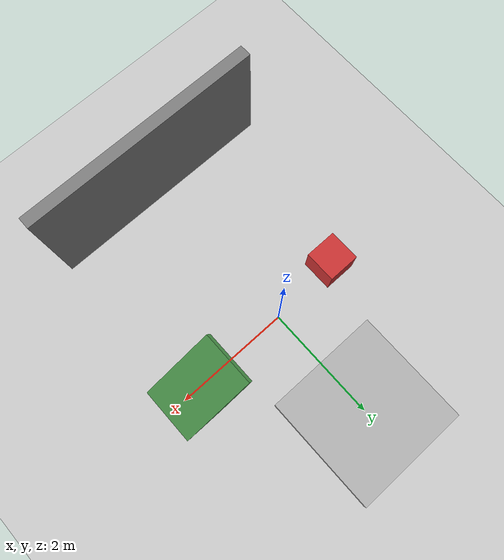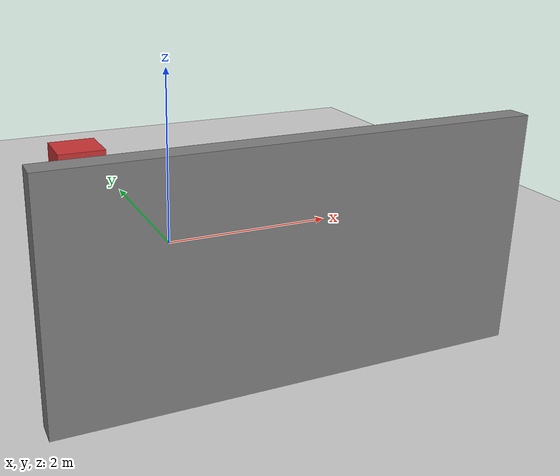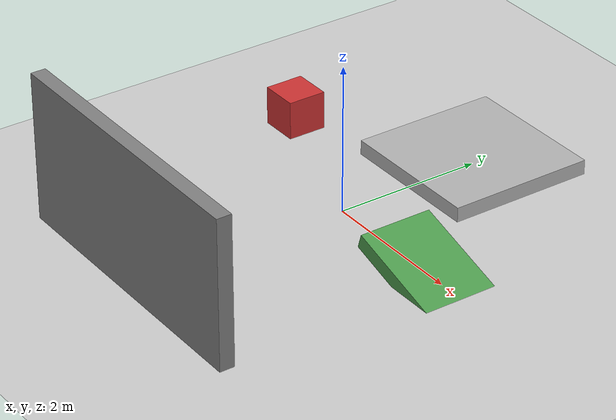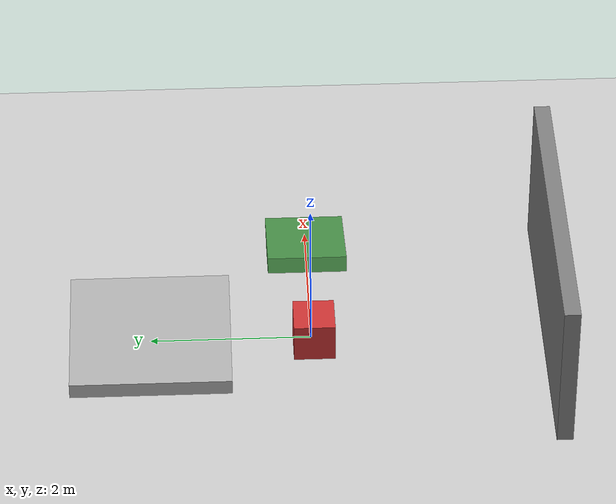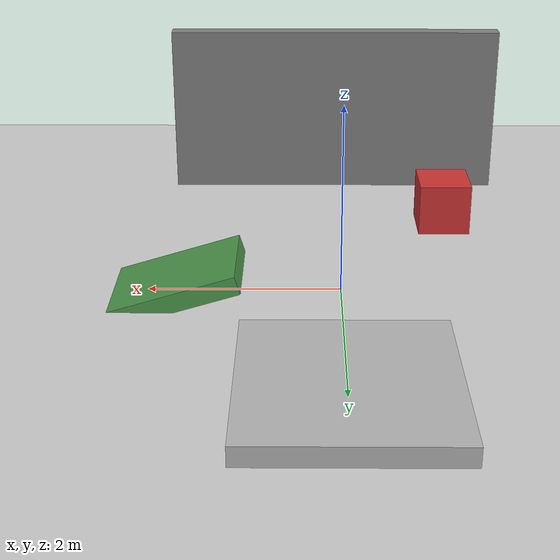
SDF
<?xml version="1.0" ?>
<sdf version="1.7">
  <world name="physics_world">
    <!-- Include the default ground plane -->
    <include>
      <uri>model://ground_plane</uri>
    </include>

    <!-- Include the default sun -->
    <include>
      <uri>model://sun</uri>
    </include>

    <!-- Physics engine configuration -->
    <physics type="ode">
      <gravity>0 0 -9.81</gravity>
      <max_step_size>0.001</max_step_size>
      <real_time_factor>1.0</real_time_factor>
      <real_time_update_rate>1000.0</real_time_update_rate>
      <max_contacts>20</max_contacts>

      <!-- ODE specific parameters for realistic humanoid physics -->
      <ode>
        <solver>
          <type>quick</type>
          <iters>50</iters>
          <sor>1.3</sor>
        </solver>
        <constraints>
          <cfm>0.000001</cfm>
          <erp>0.2</erp>
          <contact_max_correcting_vel>100.0</contact_max_correcting_vel>
          <contact_surface_layer>0.001</contact_surface_layer>
        </constraints>
      </ode>
    </physics>

    <!-- Test objects for physics validation -->
    <model name="heavy_box">
      <pose>-1 0 1 0 0 0</pose>
      <link name="link">
        <collision name="collision">
          <geometry>
            <box>
              <size>0.5 0.5 0.5</size>
            </box>
          </geometry>
        </collision>
        <visual name="visual">
          <geometry>
            <box>
              <size>0.5 0.5 0.5</size>
            </box>
          </geometry>
          <material>
            <ambient>0.8 0.2 0.2 1</ambient>
            <diffuse>0.8 0.2 0.2 1</diffuse>
            <specular>0.8 0.2 0.2 1</specular>
          </material>
        </visual>
        <inertial>
          <mass>10.0</mass>
          <inertia>
            <ixx>0.416</ixx>
            <ixy>0.0</ixy>
            <ixz>0.0</ixz>
            <iyy>0.416</iyy>
            <iyz>0.0</iyz>
            <izz>0.416</izz>
          </inertia>
        </inertial>
      </link>
    </model>

    <!-- Obstacles for collision testing -->
    <model name="wall_1">
      <pose>0 -3 1 0 0 0</pose>
      <link name="link">
        <collision name="collision">
          <geometry>
            <box>
              <size>4 0.2 2</size>
            </box>
          </geometry>
        </collision>
        <visual name="visual">
          <geometry>
            <box>
              <size>4 0.2 2</size>
            </box>
          </geometry>
          <material>
            <ambient>0.5 0.5 0.5 1</ambient>
            <diffuse>0.5 0.5 0.5 1</diffuse>
            <specular>0.5 0.5 0.5 1</specular>
          </material>
        </visual>
        <inertial>
          <mass>100.0</mass>
          <inertia>
            <ixx>66.67</ixx>
            <ixy>0.0</ixy>
            <ixz>0.0</ixz>
            <iyy>133.33</iyy>
            <iyz>0.0</iyz>
            <izz>200.0</izz>
          </inertia>
        </inertial>
      </link>
    </model>

    <!-- Ramp for testing complex physics interactions -->
    <model name="ramp">
      <pose>2 0 0 0 0.3 0</pose>
      <link name="link">
        <collision name="collision">
          <geometry>
            <box>
              <size>2 1 0.2</size>
            </box>
          </geometry>
        </collision>
        <visual name="visual">
          <geometry>
            <box>
              <size>2 1 0.2</size>
            </box>
          </geometry>
          <material>
            <ambient>0.3 0.6 0.3 1</ambient>
            <diffuse>0.3 0.6 0.3 1</diffuse>
            <specular>0.3 0.6 0.3 1</specular>
          </material>
        </visual>
        <inertial>
          <mass>50.0</mass>
          <inertia>
            <ixx>16.67</ixx>
            <ixy>0.0</ixy>
            <ixz>0.0</ixz>
            <iyy>4.17</iyy>
            <iyz>0.0</iyz>
            <izz>20.83</izz>
          </inertia>
        </inertial>
      </link>
    </model>

    <!-- Platform for humanoid to stand on -->
    <model name="platform">
      <pose>0 2 0.1 0 0 0</pose>
      <link name="link">
        <collision name="collision">
          <geometry>
            <box>
              <size>2 2 0.2</size>
            </box>
          </geometry>
        </collision>
        <visual name="visual">
          <geometry>
            <box>
              <size>2 2 0.2</size>
            </box>
          </geometry>
          <material>
            <ambient>0.7 0.7 0.7 1</ambient>
            <diffuse>0.7 0.7 0.7 1</diffuse>
            <specular>0.7 0.7 0.7 1</specular>
          </material>
        </visual>
        <inertial>
          <mass>20.0</mass>
          <inertia>
            <ixx>8.67</ixx>
            <ixy>0.0</ixy>
            <ixz>0.0</ixz>
            <iyy>8.67</iyy>
            <iyz>0.0</iyz>
            <izz>13.33</izz>
          </inertia>
        </inertial>
      </link>
    </model>

  </world>
</sdf>
